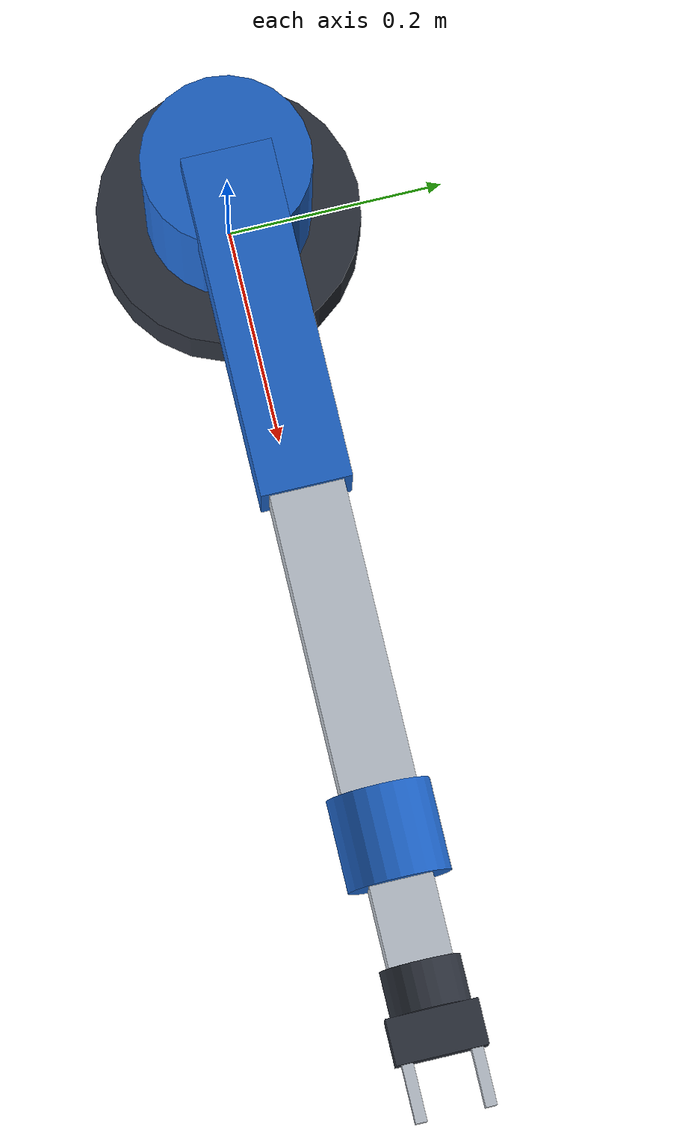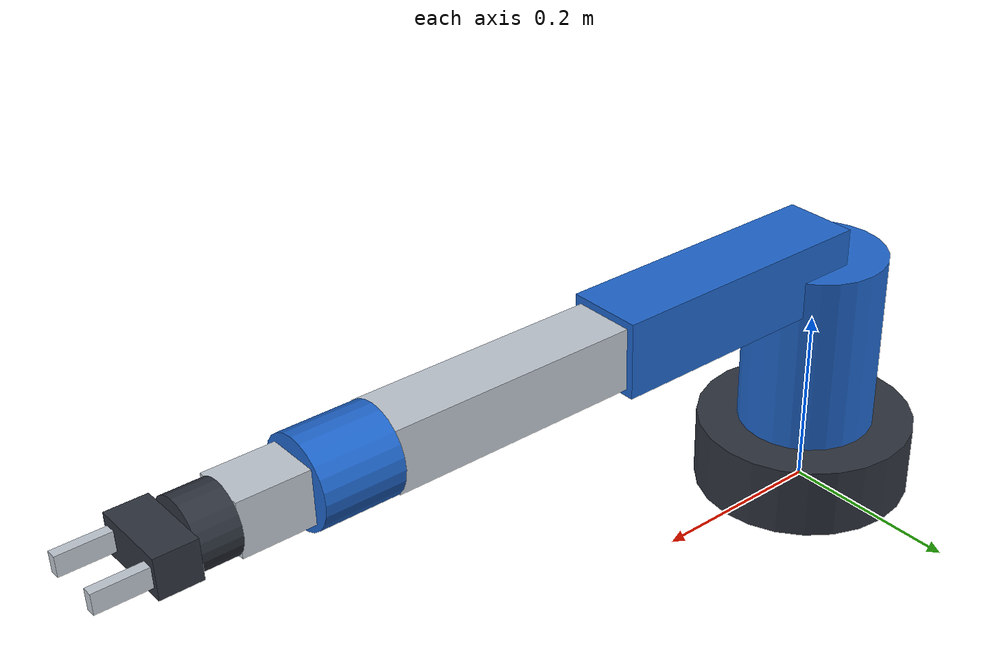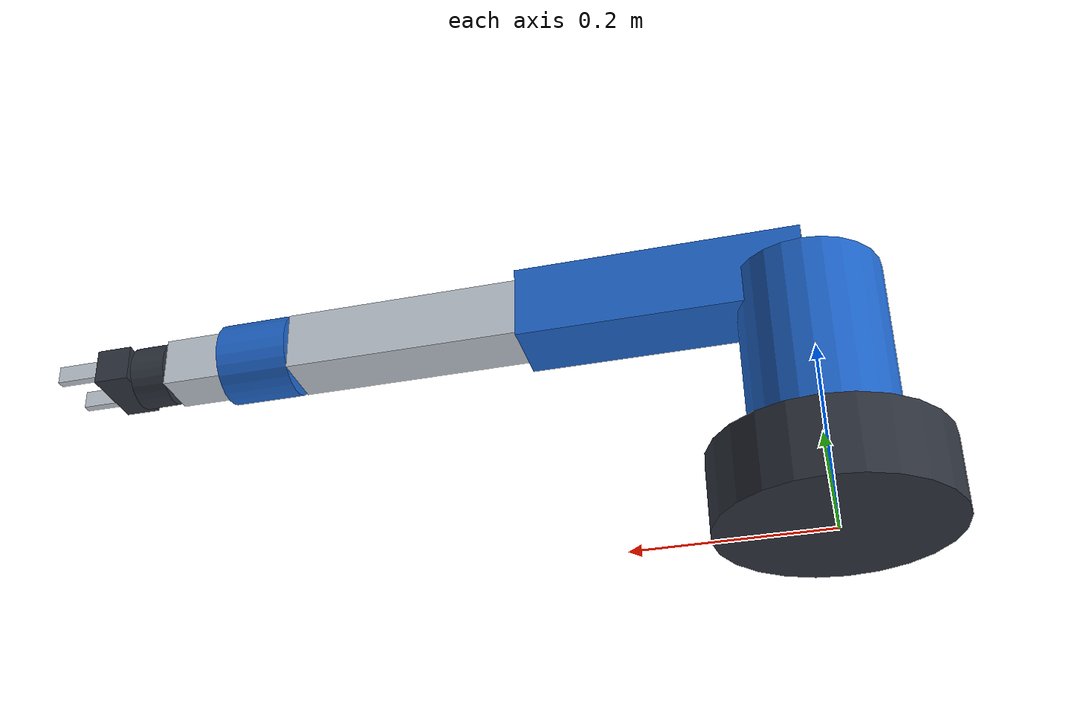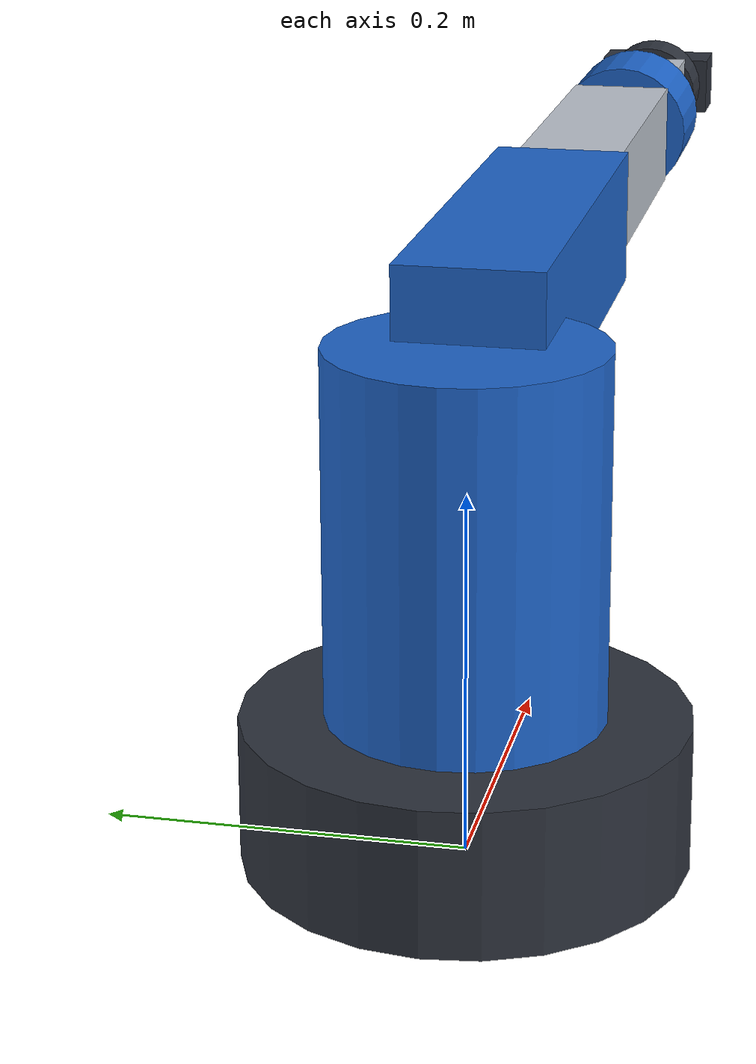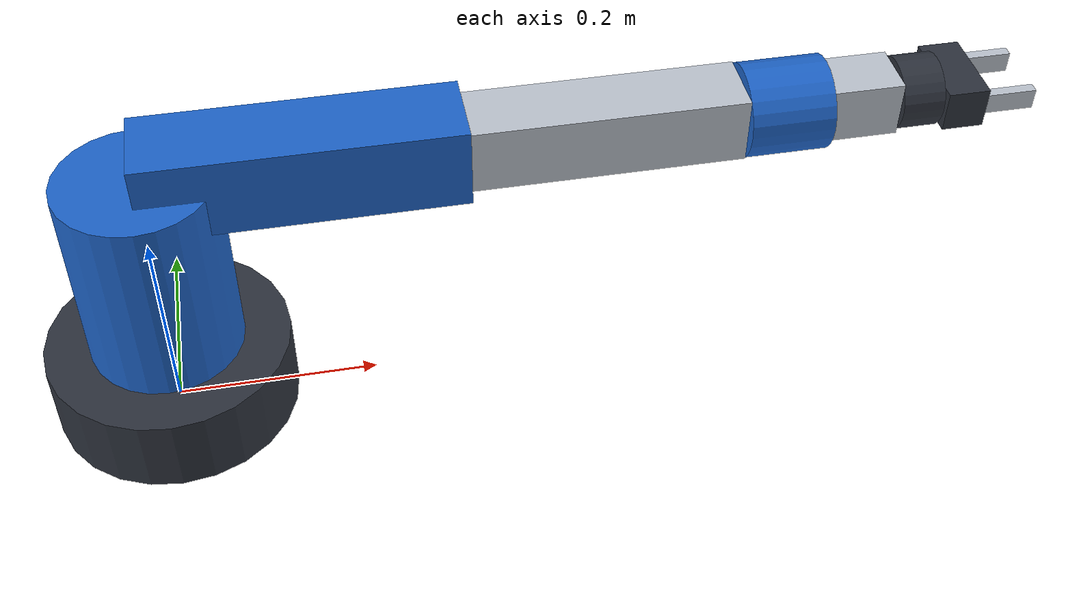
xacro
<?xml version="1.0"?>
<robot xmlns:xacro="http://www.ros.org/wiki/xacro" name="six_axis_arm">
    <xacro:arg name="initial_positions_file" default="initial_positions.yaml" />

    <!-- Import six_axis_arm urdf file -->
    <xacro:include filename="$(find robot_arm_description)/urdf/six_axis_arm.urdf.xacro" />

    <!-- Import control_xacro -->
    <xacro:include filename="six_axis_arm.ros2_control.xacro" />

    <xacro:six_axis_arm_ros2_control name="FakeSystem" initial_positions_file="$(arg initial_positions_file)"/>

</robot>

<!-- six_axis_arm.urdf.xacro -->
<robot name="six_axis_arm" xmlns:xacro="http://www.ros.org/wiki/xacro">

  <!-- Edit dimensions here. Geometry, centres of mass, inertia tensors,
       and downstream joint positions all follow these values. -->
  <!-- Base and shoulder cylinders extend along local Z. -->
  <xacro:property name="base_radius" value="0.12"/>
  <xacro:property name="base_height" value="0.08"/>
  <xacro:property name="base_mass" value="4.0"/>
  <xacro:property name="shoulder_radius" value="0.075"/>
  <xacro:property name="shoulder_height" value="0.20"/>
  <xacro:property name="shoulder_mass" value="2.0"/>

  <!-- Arm boxes extend along local X; width is Y and height is Z. -->
  <xacro:property name="upper_arm_length" value="0.30"/>
  <xacro:property name="upper_arm_width" value="0.08"/>
  <xacro:property name="upper_arm_height" value="0.08"/>
  <xacro:property name="upper_arm_mass" value="2.0"/>
  <xacro:property name="forearm_length" value="0.26"/>
  <xacro:property name="forearm_width" value="0.065"/>
  <xacro:property name="forearm_height" value="0.065"/>
  <xacro:property name="forearm_mass" value="1.5"/>

  <!-- Wrist and flange lengths extend along local X. -->
  <xacro:property name="wrist_1_radius" value="0.045"/>
  <xacro:property name="wrist_1_length" value="0.08"/>
  <xacro:property name="wrist_1_mass" value="0.5"/>
  <xacro:property name="wrist_2_length" value="0.07"/>
  <xacro:property name="wrist_2_width" value="0.055"/>
  <xacro:property name="wrist_2_height" value="0.055"/>
  <xacro:property name="wrist_2_mass" value="0.4"/>
  <xacro:property name="flange_radius" value="0.035"/>
  <xacro:property name="flange_length" value="0.04"/>
  <xacro:property name="flange_mass" value="0.2"/>

  <!-- Gripper dimensions. Extends along tool0 +Z axis. -->
  <xacro:property name="gripper_base_length" value="0.04"/>
  <xacro:property name="gripper_base_width" value="0.08"/>
  <xacro:property name="gripper_base_height" value="0.04"/>
  <xacro:property name="gripper_base_mass" value="0.3"/>
  <xacro:property name="finger_length" value="0.05"/>
  <xacro:property name="finger_width" value="0.01"/>
  <xacro:property name="finger_height" value="0.02"/>
  <xacro:property name="finger_mass" value="0.05"/>
  <xacro:property name="finger_offset" value="0.03"/>
  <xacro:property name="finger_stroke" value="0.024"/>

  <material name="dark"><color rgba="0.18 0.20 0.24 1"/></material>
  <material name="blue"><color rgba="0.12 0.40 0.80 1"/></material>
  <material name="silver"><color rgba="0.75 0.78 0.82 1"/></material>

  <link name="world"/>
  <joint name="world_to_base" type="fixed">
    <parent link="world"/><child link="base_link"/>
  </joint>

  <link name="base_link">
    <visual>
      <origin xyz="0 0 ${base_height / 2}"/>
      <geometry><cylinder radius="${base_radius}" length="${base_height}"/></geometry>
      <material name="dark"/>
    </visual>
    <collision>
      <origin xyz="0 0 ${base_height / 2}"/>
      <geometry><cylinder radius="${base_radius}" length="${base_height}"/></geometry>
    </collision>
    <inertial>
      <origin xyz="0 0 ${base_height / 2}"/><mass value="${base_mass}"/>
      <inertia ixx="${base_mass * (3 * base_radius**2 + base_height**2) / 12}" ixy="0" ixz="0"
               iyy="${base_mass * (3 * base_radius**2 + base_height**2) / 12}" iyz="0"
               izz="${base_mass * base_radius**2 / 2}"/>
    </inertial>
  </link>

  <joint name="joint_1" type="revolute">
    <parent link="base_link"/><child link="shoulder_link"/>
    <origin xyz="0 0 ${base_height}"/><axis xyz="0 0 1"/>
    <limit lower="-3.141593" upper="3.141593" effort="100" velocity="1.5"/>
    <dynamics damping="0.1" friction="0.05"/>
  </joint>
  <link name="shoulder_link">
    <visual>
      <origin xyz="0 0 ${shoulder_height / 2}"/>
      <geometry><cylinder radius="${shoulder_radius}" length="${shoulder_height}"/></geometry>
      <material name="blue"/>
    </visual>
    <collision>
      <origin xyz="0 0 ${shoulder_height / 2}"/>
      <geometry><cylinder radius="${shoulder_radius}" length="${shoulder_height}"/></geometry>
    </collision>
    <inertial>
      <origin xyz="0 0 ${shoulder_height / 2}"/><mass value="${shoulder_mass}"/>
      <inertia ixx="${shoulder_mass * (3 * shoulder_radius**2 + shoulder_height**2) / 12}" ixy="0" ixz="0"
               iyy="${shoulder_mass * (3 * shoulder_radius**2 + shoulder_height**2) / 12}" iyz="0"
               izz="${shoulder_mass * shoulder_radius**2 / 2}"/>
    </inertial>
  </link>

  <joint name="joint_2" type="revolute">
    <parent link="shoulder_link"/><child link="upper_arm_link"/>
    <origin xyz="0 0 ${shoulder_height}"/><axis xyz="0 1 0"/>
    <limit lower="-1.570796" upper="1.570796" effort="100" velocity="1.5"/>
    <dynamics damping="0.1" friction="0.05"/>
  </joint>
  <link name="upper_arm_link">
    <visual>
      <origin xyz="${upper_arm_length / 2} 0 0"/>
      <geometry><box size="${upper_arm_length} ${upper_arm_width} ${upper_arm_height}"/></geometry>
      <material name="blue"/>
    </visual>
    <collision>
      <origin xyz="${upper_arm_length / 2} 0 0"/>
      <geometry><box size="${upper_arm_length} ${upper_arm_width} ${upper_arm_height}"/></geometry>
    </collision>
    <inertial>
      <origin xyz="${upper_arm_length / 2} 0 0"/><mass value="${upper_arm_mass}"/>
      <inertia ixx="${upper_arm_mass * (upper_arm_width**2 + upper_arm_height**2) / 12}" ixy="0" ixz="0"
               iyy="${upper_arm_mass * (upper_arm_length**2 + upper_arm_height**2) / 12}" iyz="0"
               izz="${upper_arm_mass * (upper_arm_length**2 + upper_arm_width**2) / 12}"/>
    </inertial>
  </link>

  <joint name="joint_3" type="revolute">
    <parent link="upper_arm_link"/><child link="forearm_link"/>
    <origin xyz="${upper_arm_length} 0 0"/><axis xyz="0 1 0"/>
    <limit lower="-2.356194" upper="2.356194" effort="60" velocity="1.8"/>
    <dynamics damping="0.1" friction="0.05"/>
  </joint>
  <link name="forearm_link">
    <visual>
      <origin xyz="${forearm_length / 2} 0 0"/>
      <geometry><box size="${forearm_length} ${forearm_width} ${forearm_height}"/></geometry>
      <material name="silver"/>
    </visual>
    <collision>
      <origin xyz="${forearm_length / 2} 0 0"/>
      <geometry><box size="${forearm_length} ${forearm_width} ${forearm_height}"/></geometry>
    </collision>
    <inertial>
      <origin xyz="${forearm_length / 2} 0 0"/><mass value="${forearm_mass}"/>
      <inertia ixx="${forearm_mass * (forearm_width**2 + forearm_height**2) / 12}" ixy="0" ixz="0"
               iyy="${forearm_mass * (forearm_length**2 + forearm_height**2) / 12}" iyz="0"
               izz="${forearm_mass * (forearm_length**2 + forearm_width**2) / 12}"/>
    </inertial>
  </link>

  <joint name="joint_4" type="revolute">
    <parent link="forearm_link"/><child link="wrist_1_link"/>
    <origin xyz="${forearm_length} 0 0"/><axis xyz="1 0 0"/>
    <limit lower="-3.141593" upper="3.141593" effort="20" velocity="2.5"/>
    <dynamics damping="0.05" friction="0.02"/>
  </joint>
  <link name="wrist_1_link">
    <visual>
      <origin xyz="${wrist_1_length / 2} 0 0" rpy="0 ${pi / 2} 0"/>
      <geometry><cylinder radius="${wrist_1_radius}" length="${wrist_1_length}"/></geometry>
      <material name="blue"/>
    </visual>
    <collision>
      <origin xyz="${wrist_1_length / 2} 0 0" rpy="0 ${pi / 2} 0"/>
      <geometry><cylinder radius="${wrist_1_radius}" length="${wrist_1_length}"/></geometry>
    </collision>
    <inertial>
      <origin xyz="${wrist_1_length / 2} 0 0"/><mass value="${wrist_1_mass}"/>
      <inertia ixx="${wrist_1_mass * wrist_1_radius**2 / 2}" ixy="0" ixz="0"
               iyy="${wrist_1_mass * (3 * wrist_1_radius**2 + wrist_1_length**2) / 12}" iyz="0"
               izz="${wrist_1_mass * (3 * wrist_1_radius**2 + wrist_1_length**2) / 12}"/>
    </inertial>
  </link>

  <joint name="joint_5" type="revolute">
    <parent link="wrist_1_link"/><child link="wrist_2_link"/>
    <origin xyz="${wrist_1_length} 0 0"/><axis xyz="0 1 0"/>
    <limit lower="-1.570796" upper="1.570796" effort="20" velocity="2.5"/>
    <dynamics damping="0.05" friction="0.02"/>
  </joint>
  <link name="wrist_2_link">
    <visual>
      <origin xyz="${wrist_2_length / 2} 0 0"/>
      <geometry><box size="${wrist_2_length} ${wrist_2_width} ${wrist_2_height}"/></geometry>
      <material name="silver"/>
    </visual>
    <collision>
      <origin xyz="${wrist_2_length / 2} 0 0"/>
      <geometry><box size="${wrist_2_length} ${wrist_2_width} ${wrist_2_height}"/></geometry>
    </collision>
    <inertial>
      <origin xyz="${wrist_2_length / 2} 0 0"/><mass value="${wrist_2_mass}"/>
      <inertia ixx="${wrist_2_mass * (wrist_2_width**2 + wrist_2_height**2) / 12}" ixy="0" ixz="0"
               iyy="${wrist_2_mass * (wrist_2_length**2 + wrist_2_height**2) / 12}" iyz="0"
               izz="${wrist_2_mass * (wrist_2_length**2 + wrist_2_width**2) / 12}"/>
    </inertial>
  </link>

  <joint name="joint_6" type="revolute">
    <parent link="wrist_2_link"/><child link="flange_link"/>
    <origin xyz="${wrist_2_length} 0 0"/><axis xyz="1 0 0"/>
    <limit lower="-3.141593" upper="3.141593" effort="10" velocity="3.0"/>
    <dynamics damping="0.05" friction="0.02"/>
  </joint>
  <link name="flange_link">
    <visual>
      <origin xyz="${flange_length / 2} 0 0" rpy="0 ${pi / 2} 0"/>
      <geometry><cylinder radius="${flange_radius}" length="${flange_length}"/></geometry>
      <material name="dark"/>
    </visual>
    <collision>
      <origin xyz="${flange_length / 2} 0 0" rpy="0 ${pi / 2} 0"/>
      <geometry><cylinder radius="${flange_radius}" length="${flange_length}"/></geometry>
    </collision>
    <inertial>
      <origin xyz="${flange_length / 2} 0 0"/><mass value="${flange_mass}"/>
      <inertia ixx="${flange_mass * flange_radius**2 / 2}" ixy="0" ixz="0"
               iyy="${flange_mass * (3 * flange_radius**2 + flange_length**2) / 12}" iyz="0"
               izz="${flange_mass * (3 * flange_radius**2 + flange_length**2) / 12}"/>
    </inertial>
  </link>

  <!-- Tool frame at the flange face, with +Z pointing out along the tool. -->
  <joint name="flange_to_tool" type="fixed">
    <parent link="flange_link"/><child link="tool0"/>
    <origin xyz="${flange_length} 0 0" rpy="0 ${pi / 2} 0"/>
  </joint>
  <link name="tool0"/>

  <!-- Parallel 2-finger gripper attached to tool0, extending along +Z. -->
  <joint name="tool0_to_gripper_base" type="fixed">
    <parent link="tool0"/><child link="gripper_base_link"/>
    <origin xyz="0 0 0" rpy="0 0 0"/>
  </joint>
  <link name="gripper_base_link">
    <visual>
      <origin xyz="0 0 ${gripper_base_length / 2}"/>
      <geometry><box size="${gripper_base_height} ${gripper_base_width} ${gripper_base_length}"/></geometry>
      <material name="dark"/>
    </visual>
    <collision>
      <origin xyz="0 0 ${gripper_base_length / 2}"/>
      <geometry><box size="${gripper_base_height} ${gripper_base_width} ${gripper_base_length}"/></geometry>
    </collision>
    <inertial>
      <origin xyz="0 0 ${gripper_base_length / 2}"/><mass value="${gripper_base_mass}"/>
      <inertia ixx="${gripper_base_mass * (gripper_base_width**2 + gripper_base_length**2) / 12}" ixy="0" ixz="0"
               iyy="${gripper_base_mass * (gripper_base_height**2 + gripper_base_length**2) / 12}" iyz="0"
               izz="${gripper_base_mass * (gripper_base_height**2 + gripper_base_width**2) / 12}"/>
    </inertial>
  </link>

  <joint name="left_finger_joint" type="prismatic">
    <parent link="gripper_base_link"/><child link="left_finger_link"/>
    <origin xyz="0 ${finger_offset} ${gripper_base_length}" rpy="0 0 0"/>
    <axis xyz="0 -1 0"/>
    <limit lower="0.0" upper="${finger_stroke}" effort="20" velocity="0.2"/>
    <dynamics damping="0.05" friction="0.02"/>
  </joint>
  <link name="left_finger_link">
    <visual>
      <origin xyz="0 0 ${finger_length / 2}"/>
      <geometry><box size="${finger_height} ${finger_width} ${finger_length}"/></geometry>
      <material name="silver"/>
    </visual>
    <collision>
      <origin xyz="0 0 ${finger_length / 2}"/>
      <geometry><box size="${finger_height} ${finger_width} ${finger_length}"/></geometry>
    </collision>
    <inertial>
      <origin xyz="0 0 ${finger_length / 2}"/><mass value="${finger_mass}"/>
      <inertia ixx="${finger_mass * (finger_width**2 + finger_length**2) / 12}" ixy="0" ixz="0"
               iyy="${finger_mass * (finger_height**2 + finger_length**2) / 12}" iyz="0"
               izz="${finger_mass * (finger_height**2 + finger_width**2) / 12}"/>
    </inertial>
  </link>

  <joint name="right_finger_joint" type="prismatic">
    <parent link="gripper_base_link"/><child link="right_finger_link"/>
    <origin xyz="0 -${finger_offset} ${gripper_base_length}" rpy="0 0 0"/>
    <axis xyz="0 1 0"/>
    <limit lower="0.0" upper="${finger_stroke}" effort="20" velocity="0.2"/>
    <dynamics damping="0.05" friction="0.02"/>
    <mimic joint="left_finger_joint" multiplier="1" offset="0"/>
  </joint>
  <link name="right_finger_link">
    <visual>
      <origin xyz="0 0 ${finger_length / 2}"/>
      <geometry><box size="${finger_height} ${finger_width} ${finger_length}"/></geometry>
      <material name="silver"/>
    </visual>
    <collision>
      <origin xyz="0 0 ${finger_length / 2}"/>
      <geometry><box size="${finger_height} ${finger_width} ${finger_length}"/></geometry>
    </collision>
    <inertial>
      <origin xyz="0 0 ${finger_length / 2}"/><mass value="${finger_mass}"/>
      <inertia ixx="${finger_mass * (finger_width**2 + finger_length**2) / 12}" ixy="0" ixz="0"
               iyy="${finger_mass * (finger_height**2 + finger_length**2) / 12}" iyz="0"
               izz="${finger_mass * (finger_height**2 + finger_width**2) / 12}"/>
    </inertial>
  </link>
</robot>
